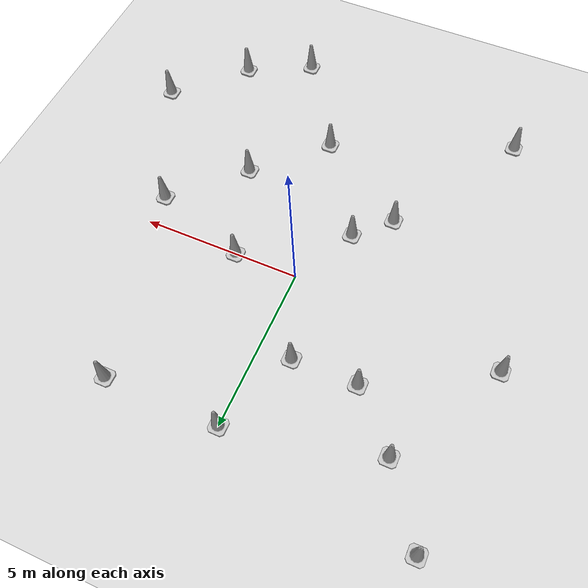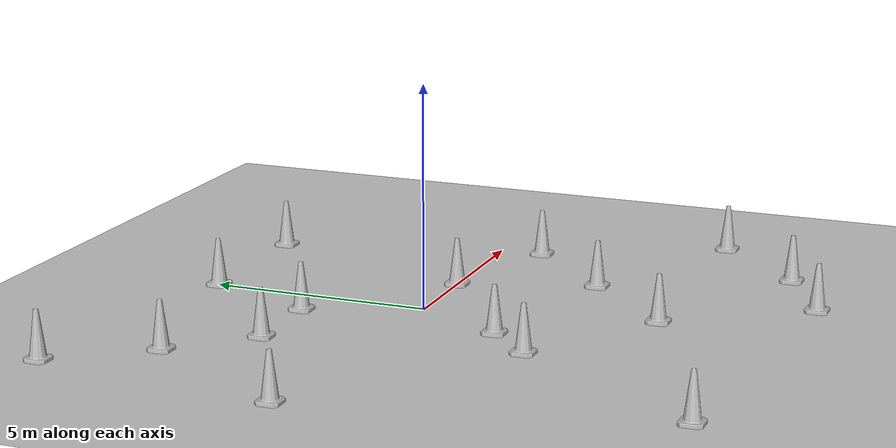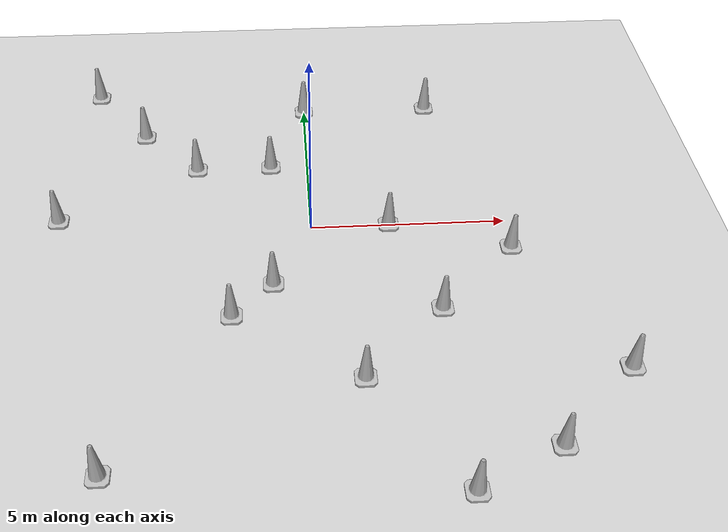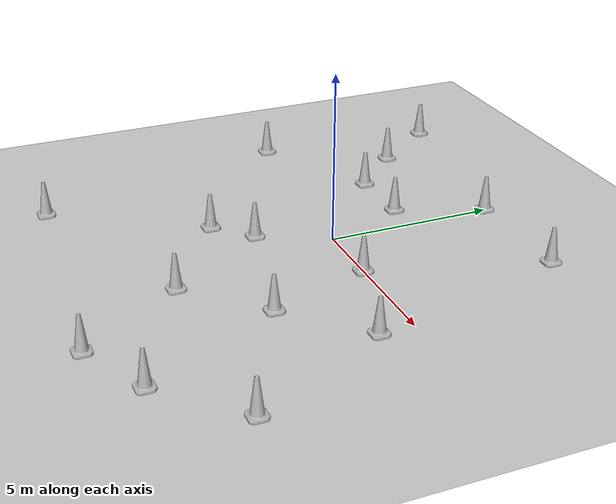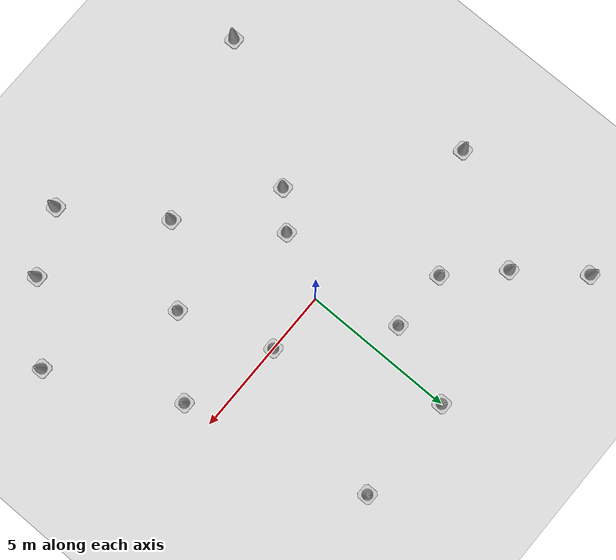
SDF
<sdf version="1.7">
 <world name="default">
  <light name="sun" type="directional">
   <pose>0 0 10 0 -0 0</pose>
   <diffuse>0.8 0.8 0.8 1</diffuse>
   <specular>0.2 0.2 0.2 1</specular>
   <attenuation>
    <range>1000</range>
    <constant>0.9</constant>
    <linear>0.01</linear>
    <quadratic>0.001</quadratic>
   </attenuation>
   <direction>-0.5 0.1 -0.9</direction>
   <spot><inner_angle>0</inner_angle><outer_angle>0</outer_angle><falloff>0</falloff></spot>
  </light>
  <model name="ground_plane">
   <static>1</static>
   <link name="link">
    <collision name="collision">
     <geometry><plane><normal>0 0 1</normal><size>100 100</size></plane></geometry>
     <surface>
      <contact><collide_bitmask>65535</collide_bitmask></contact>
      <friction><ode><mu>100</mu><mu2>50</mu2></ode></friction>
     </surface>
    </collision>
    <visual name="visual">
     <cast_shadows>0</cast_shadows>
     <geometry><plane><normal>0 0 1</normal><size>100 100</size></plane></geometry>
     <material>
      <script><uri>file://media/materials/scripts/gazebo.material</uri><name>Gazebo/Grey</name></script>
     </material>
    </visual>
   </link>
  </model>
  <gravity>0 0 -9.8</gravity>
  <magnetic_field>6e-06 2.3e-05 -4.2e-05</magnetic_field>
  <atmosphere type="adiabatic"/>
  <physics type="ode">
   <max_step_size>0.001</max_step_size>
   <real_time_factor>1</real_time_factor>
   <real_time_update_rate>1000</real_time_update_rate>
  </physics>
  <scene><ambient>0.4 0.4 0.4 1</ambient><background>0.7 0.7 0.7 1</background><shadows>1</shadows></scene>
  <audio><device>default</device></audio>
  <spherical_coordinates>
   <surface_model>EARTH_WGS84</surface_model>
   <latitude_deg>0</latitude_deg>
   <longitude_deg>0</longitude_deg>
   <elevation>0</elevation>
   <heading_deg>0</heading_deg>
  </spherical_coordinates>
  <model name="Construction Cone">
   <link name="link">
    <collision name="collision">
     <geometry>
      <mesh><scale>10 10 10</scale><uri>model://construction_cone/meshes/construction_cone.dae</uri></mesh>
     </geometry>
    </collision>
    <visual name="visual">
     <geometry>
      <mesh><scale>10 10 10</scale><uri>model://construction_cone/meshes/construction_cone.dae</uri></mesh>
     </geometry>
    </visual>
    <inertial>
     <inertia><ixx>1</ixx><ixy>0</ixy><ixz>0</ixz><iyy>1</iyy><iyz>0</iyz><izz>1</izz></inertia>
     <mass>1</mass>
    </inertial>
   </link>
   <pose>-4.64979 -7.2668 -1e-05 -1e-06 0 0</pose>
  </model>
  <model name="Construction Cone_clone">
   <link name="link">
    <collision name="collision">
     <geometry>
      <mesh><scale>10 10 10</scale><uri>model://construction_cone/meshes/construction_cone.dae</uri></mesh>
     </geometry>
    </collision>
    <visual name="visual">
     <geometry>
      <mesh><scale>10 10 10</scale><uri>model://construction_cone/meshes/construction_cone.dae</uri></mesh>
     </geometry>
    </visual>
    <inertial>
     <inertia><ixx>1</ixx><ixy>0</ixy><ixz>0</ixz><iyy>1</iyy><iyz>0</iyz><izz>1</izz></inertia>
     <mass>1</mass>
    </inertial>
   </link>
   <pose>3 -8 -1e-05 -0 -0 -0</pose>
  </model>
  <model name="Construction Cone_clone_0">
   <link name="link">
    <collision name="collision">
     <geometry>
      <mesh><scale>10 10 10</scale><uri>model://construction_cone/meshes/construction_cone.dae</uri></mesh>
     </geometry>
    </collision>
    <visual name="visual">
     <geometry>
      <mesh><scale>10 10 10</scale><uri>model://construction_cone/meshes/construction_cone.dae</uri></mesh>
     </geometry>
    </visual>
    <inertial>
     <inertia><ixx>1</ixx><ixy>0</ixy><ixz>0</ixz><iyy>1</iyy><iyz>0</iyz><izz>1</izz></inertia>
     <mass>1</mass>
    </inertial>
   </link>
   <pose>5 -7 -1e-05 0 -0 0</pose>
  </model>
  <model name="Construction Cone_clone_1">
   <link name="link">
    <collision name="collision">
     <geometry>
      <mesh><scale>10 10 10</scale><uri>model://construction_cone/meshes/construction_cone.dae</uri></mesh>
     </geometry>
    </collision>
    <visual name="visual">
     <geometry>
      <mesh><scale>10 10 10</scale><uri>model://construction_cone/meshes/construction_cone.dae</uri></mesh>
     </geometry>
    </visual>
    <inertial>
     <inertia><ixx>1</ixx><ixy>0</ixy><ixz>0</ixz><iyy>1</iyy><iyz>0</iyz><izz>1</izz></inertia>
     <mass>1</mass>
    </inertial>
   </link>
   <pose>7 -5 -0 0 -0 0</pose>
  </model>
  <model name="Construction Cone_clone_2">
   <link name="link">
    <collision name="collision">
     <geometry>
      <mesh><scale>10 10 10</scale><uri>model://construction_cone/meshes/construction_cone.dae</uri></mesh>
     </geometry>
    </collision>
    <visual name="visual">
     <geometry>
      <mesh><scale>10 10 10</scale><uri>model://construction_cone/meshes/construction_cone.dae</uri></mesh>
     </geometry>
    </visual>
    <inertial>
     <inertia><ixx>1</ixx><ixy>0</ixy><ixz>0</ixz><iyy>1</iyy><iyz>0</iyz><izz>1</izz></inertia>
     <mass>1</mass>
    </inertial>
   </link>
   <pose>3 -3 0 -0 -0 -0</pose>
  </model>
  <model name="Construction Cone_clone_3">
   <link name="link">
    <collision name="collision">
     <geometry>
      <mesh><scale>10 10 10</scale><uri>model://construction_cone/meshes/construction_cone.dae</uri></mesh>
     </geometry>
    </collision>
    <visual name="visual">
     <geometry>
      <mesh><scale>10 10 10</scale><uri>model://construction_cone/meshes/construction_cone.dae</uri></mesh>
     </geometry>
    </visual>
    <inertial>
     <inertia><ixx>1</ixx><ixy>0</ixy><ixz>0</ixz><iyy>1</iyy><iyz>0</iyz><izz>1</izz></inertia>
     <mass>1</mass>
    </inertial>
   </link>
   <pose>2 0 -0 0 -0 0</pose>
  </model>
  <model name="Construction Cone_clone_4">
   <link name="link">
    <collision name="collision">
     <geometry>
      <mesh><scale>10 10 10</scale><uri>model://construction_cone/meshes/construction_cone.dae</uri></mesh>
     </geometry>
    </collision>
    <visual name="visual">
     <geometry>
      <mesh><scale>10 10 10</scale><uri>model://construction_cone/meshes/construction_cone.dae</uri></mesh>
     </geometry>
    </visual>
    <inertial>
     <inertia><ixx>1</ixx><ixy>0</ixy><ixz>0</ixz><iyy>1</iyy><iyz>0</iyz><izz>1</izz></inertia>
     <mass>1</mass>
    </inertial>
   </link>
   <pose>5 -1 -9e-06 -5e-06 -0 -0</pose>
  </model>
  <model name="Construction Cone_clone_5">
   <link name="link">
    <collision name="collision">
     <geometry>
      <mesh><scale>10 10 10</scale><uri>model://construction_cone/meshes/construction_cone.dae</uri></mesh>
     </geometry>
    </collision>
    <visual name="visual">
     <geometry>
      <mesh><scale>10 10 10</scale><uri>model://construction_cone/meshes/construction_cone.dae</uri></mesh>
     </geometry>
    </visual>
    <inertial>
     <inertia><ixx>1</ixx><ixy>0</ixy><ixz>0</ixz><iyy>1</iyy><iyz>0</iyz><izz>1</izz></inertia>
     <mass>1</mass>
    </inertial>
   </link>
   <pose>-1 -2 -1e-06 1e-06 -2e-06 -0</pose>
  </model>
  <model name="Construction Cone_clone_6">
   <link name="link">
    <collision name="collision">
     <geometry>
      <mesh><scale>10 10 10</scale><uri>model://construction_cone/meshes/construction_cone.dae</uri></mesh>
     </geometry>
    </collision>
    <visual name="visual">
     <geometry>
      <mesh><scale>10 10 10</scale><uri>model://construction_cone/meshes/construction_cone.dae</uri></mesh>
     </geometry>
    </visual>
    <inertial>
     <inertia><ixx>1</ixx><ixy>0</ixy><ixz>0</ixz><iyy>1</iyy><iyz>0</iyz><izz>1</izz></inertia>
     <mass>1</mass>
    </inertial>
   </link>
   <pose>-6.51631 0.53522 0 -0 -0 -0</pose>
  </model>
  <model name="Construction Cone_clone_7">
   <link name="link">
    <collision name="collision">
     <geometry>
      <mesh><scale>10 10 10</scale><uri>model://construction_cone/meshes/construction_cone.dae</uri></mesh>
     </geometry>
    </collision>
    <visual name="visual">
     <geometry>
      <mesh><scale>10 10 10</scale><uri>model://construction_cone/meshes/construction_cone.dae</uri></mesh>
     </geometry>
    </visual>
    <inertial>
     <inertia><ixx>1</ixx><ixy>0</ixy><ixz>0</ixz><iyy>1</iyy><iyz>0</iyz><izz>1</izz></inertia>
     <mass>1</mass>
    </inertial>
   </link>
   <pose>-2 -3 -0 0 -0 0</pose>
  </model>
  <model name="Construction Cone_clone_8">
   <link name="link">
    <collision name="collision">
     <geometry>
      <mesh><scale>10 10 10</scale><uri>model://construction_cone/meshes/construction_cone.dae</uri></mesh>
     </geometry>
    </collision>
    <visual name="visual">
     <geometry>
      <mesh><scale>10 10 10</scale><uri>model://construction_cone/meshes/construction_cone.dae</uri></mesh>
     </geometry>
    </visual>
    <inertial>
     <inertia><ixx>1</ixx><ixy>0</ixy><ixz>0</ixz><iyy>1</iyy><iyz>0</iyz><izz>1</izz></inertia>
     <mass>1</mass>
    </inertial>
   </link>
   <pose>1 -5 -0 0 -1e-06 0</pose>
  </model>
  <model name="Construction Cone_clone_9">
   <link name="link">
    <collision name="collision">
     <geometry>
      <mesh><scale>10 10 10</scale><uri>model://construction_cone/meshes/construction_cone.dae</uri></mesh>
     </geometry>
    </collision>
    <visual name="visual">
     <geometry>
      <mesh><scale>10 10 10</scale><uri>model://construction_cone/meshes/construction_cone.dae</uri></mesh>
     </geometry>
    </visual>
    <inertial>
     <inertia><ixx>1</ixx><ixy>0</ixy><ixz>0</ixz><iyy>1</iyy><iyz>0</iyz><izz>1</izz></inertia>
     <mass>1</mass>
    </inertial>
   </link>
   <pose>-6 6 -0 0 -1e-06 0</pose>
  </model>
  <model name="Construction Cone_clone_10">
   <link name="link">
    <collision name="collision">
     <geometry>
      <mesh><scale>10 10 10</scale><uri>model://construction_cone/meshes/construction_cone.dae</uri></mesh>
     </geometry>
    </collision>
    <visual name="visual">
     <geometry>
      <mesh><scale>10 10 10</scale><uri>model://construction_cone/meshes/construction_cone.dae</uri></mesh>
     </geometry>
    </visual>
    <inertial>
     <inertia><ixx>1</ixx><ixy>0</ixy><ixz>0</ixz><iyy>1</iyy><iyz>0</iyz><izz>1</izz></inertia>
     <mass>1</mass>
    </inertial>
   </link>
   <pose>-4.51335 4 0 -0 -0 -0</pose>
  </model>
  <model name="Construction Cone_clone_11">
   <link name="link">
    <collision name="collision">
     <geometry>
      <mesh><scale>10 10 10</scale><uri>model://construction_cone/meshes/construction_cone.dae</uri></mesh>
     </geometry>
    </collision>
    <visual name="visual">
     <geometry>
      <mesh><scale>10 10 10</scale><uri>model://construction_cone/meshes/construction_cone.dae</uri></mesh>
     </geometry>
    </visual>
    <inertial>
     <inertia><ixx>1</ixx><ixy>0</ixy><ixz>0</ixz><iyy>1</iyy><iyz>0</iyz><izz>1</izz></inertia>
     <mass>1</mass>
    </inertial>
   </link>
   <pose>-3 2.45658 0 -0 -0 -0</pose>
  </model>
  <model name="Construction Cone_clone_12">
   <link name="link">
    <collision name="collision">
     <geometry>
      <mesh><scale>10 10 10</scale><uri>model://construction_cone/meshes/construction_cone.dae</uri></mesh>
     </geometry>
    </collision>
    <visual name="visual">
     <geometry>
      <mesh><scale>10 10 10</scale><uri>model://construction_cone/meshes/construction_cone.dae</uri></mesh>
     </geometry>
    </visual>
    <inertial>
     <inertia><ixx>1</ixx><ixy>0</ixy><ixz>0</ixz><iyy>1</iyy><iyz>0</iyz><izz>1</izz></inertia>
     <mass>1</mass>
    </inertial>
   </link>
   <pose>-1 2.47352 -1e-05 0 1e-06 0</pose>
  </model>
  <model name="Construction Cone_clone_13">
   <link name="link">
    <collision name="collision">
     <geometry>
      <mesh><scale>10 10 10</scale><uri>model://construction_cone/meshes/construction_cone.dae</uri></mesh>
     </geometry>
    </collision>
    <visual name="visual">
     <geometry>
      <mesh><scale>10 10 10</scale><uri>model://construction_cone/meshes/construction_cone.dae</uri></mesh>
     </geometry>
    </visual>
    <inertial>
     <inertia><ixx>1</ixx><ixy>0</ixy><ixz>0</ixz><iyy>1</iyy><iyz>0</iyz><izz>1</izz></inertia>
     <mass>1</mass>
    </inertial>
   </link>
   <pose>-0 5 -0 0 -0 0</pose>
  </model>
  <model name="Construction Cone_clone_14">
   <link name="link">
    <collision name="collision">
     <geometry>
      <mesh><scale>10 10 10</scale><uri>model://construction_cone/meshes/construction_cone.dae</uri></mesh>
     </geometry>
    </collision>
    <visual name="visual">
     <geometry>
      <mesh><scale>10 10 10</scale><uri>model://construction_cone/meshes/construction_cone.dae</uri></mesh>
     </geometry>
    </visual>
    <inertial>
     <inertia><ixx>1</ixx><ixy>0</ixy><ixz>0</ixz><iyy>1</iyy><iyz>0</iyz><izz>1</izz></inertia>
     <mass>1</mass>
    </inertial>
   </link>
   <pose>3.53087 5 -0 0 -0 0</pose>
  </model>
 </world>
</sdf>
